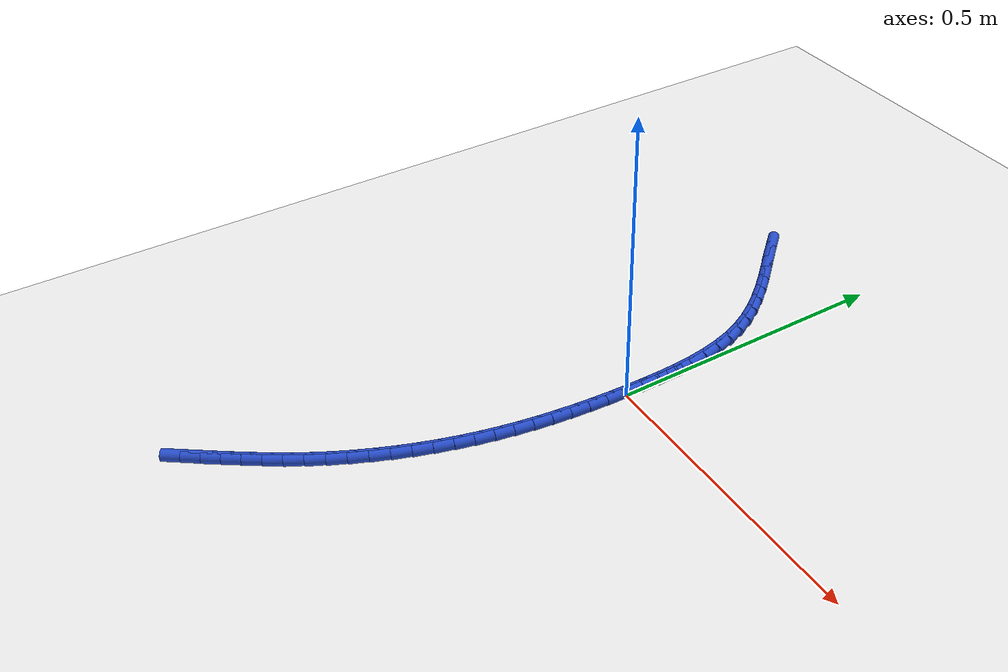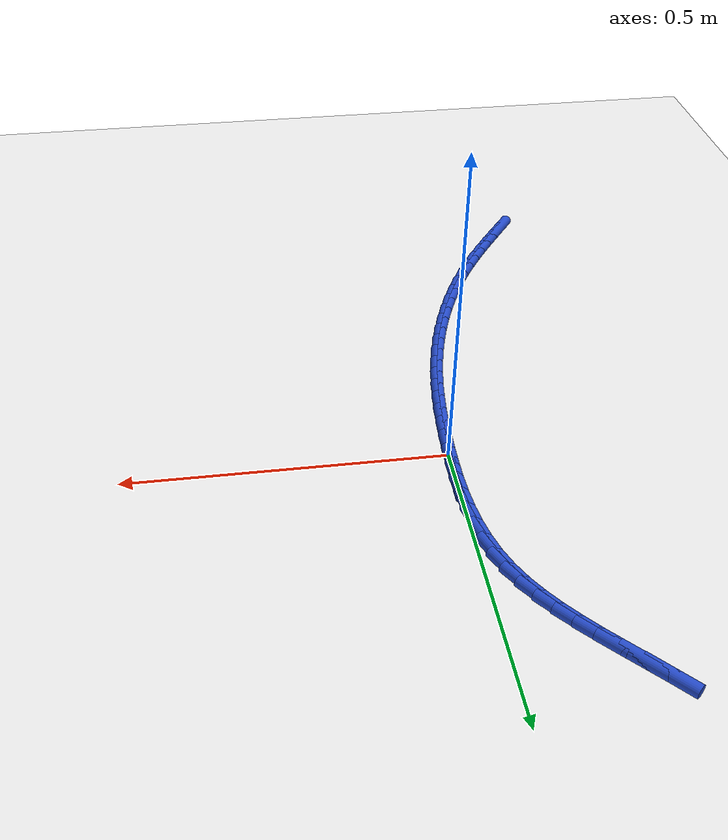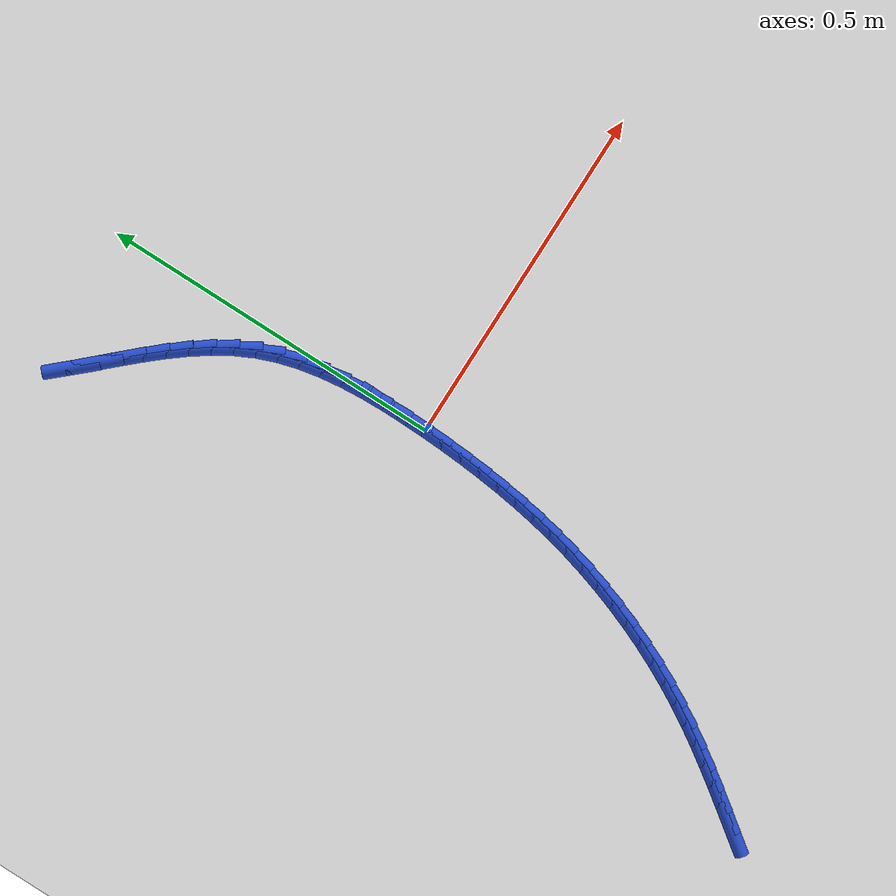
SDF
<sdf version="1.6">
 <world name="default">
  <model name="ground_plane">
   <static>1</static>
   <link name="link">
    <collision name="collision">
     <geometry><plane><normal>0 0 1</normal><size>100 100</size></plane></geometry>
     <surface><friction><ode><mu>100</mu><mu2>50</mu2></ode></friction></surface>
    </collision>
    <visual name="visual">
     <cast_shadows>0</cast_shadows>
     <geometry><plane><normal>0 0 1</normal><size>100 100</size></plane></geometry>
     <material>
      <script><uri>file://media/materials/scripts/gazebo.material</uri><name>Gazebo/WhiteGlow</name></script>
     </material>
    </visual>
   </link>
  </model>
  <model name="line">
   <link name="link_0">
    <pose>-2.4936649967166602e-18 2.0816681711721685e-17 0.01 0 1.57 1.546620202439444</pose>
    <collision name="collision">
     <geometry><cylinder><radius>0.01</radius><length>0.08</length></cylinder></geometry>
    </collision>
    <visual name="visual">
     <material>
      <script><name>Gazebo/Blue</name><uri>file://media/materials/scripts/gazebo.material</uri></script>
     </material>
     <geometry><cylinder><radius>0.01</radius><length>0.08</length></cylinder></geometry>
    </visual>
   </link>
   <link name="link_1">
    <pose>0.0007892910329652883 0.03264118098984923 0.01 0 1.57 -1.5697717680447212</pose>
    <collision name="collision">
     <geometry><cylinder><radius>0.01</radius><length>0.08</length></cylinder></geometry>
    </collision>
    <visual name="visual">
     <material>
      <script><name>Gazebo/Blue</name><uri>file://media/materials/scripts/gazebo.material</uri></script>
     </material>
     <geometry><cylinder><radius>0.01</radius><length>0.08</length></cylinder></geometry>
    </visual>
   </link>
   <link name="link_2">
    <pose>0.0007557367479779746 0.06539115578699509 0.01 0 1.57 -1.5357777210249333</pose>
    <collision name="collision">
     <geometry><cylinder><radius>0.01</radius><length>0.08</length></cylinder></geometry>
    </collision>
    <visual name="visual">
     <material>
      <script><name>Gazebo/Blue</name><uri>file://media/materials/scripts/gazebo.material</uri></script>
     </material>
     <geometry><cylinder><radius>0.01</radius><length>0.08</length></cylinder></geometry>
    </visual>
   </link>
   <link name="link_3">
    <pose>-0.00038771334826898703 0.09803045217149915 0.01 0 1.57 -1.492329982726787</pose>
    <collision name="collision">
     <geometry><cylinder><radius>0.01</radius><length>0.08</length></cylinder></geometry>
    </collision>
    <visual name="visual">
     <material>
      <script><name>Gazebo/Blue</name><uri>file://media/materials/scripts/gazebo.material</uri></script>
     </material>
     <geometry><cylinder><radius>0.01</radius><length>0.08</length></cylinder></geometry>
    </visual>
   </link>
   <link name="link_4">
    <pose>-0.0029281097490826413 0.13033959792342292 0.01 0 1.57 -1.4385606663292798</pose>
    <collision name="collision">
     <geometry><cylinder><radius>0.01</radius><length>0.08</length></cylinder></geometry>
    </collision>
    <visual name="visual">
     <material>
      <script><name>Gazebo/Blue</name><uri>file://media/materials/scripts/gazebo.material</uri></script>
     </material>
     <geometry><cylinder><radius>0.01</radius><length>0.08</length></cylinder></geometry>
    </visual>
   </link>
   <link name="link_5">
    <pose>-0.0071525029477700315 0.1620991208228279 0.01 0 1.57 -1.3734828369184402</pose>
    <collision name="collision">
     <geometry><cylinder><radius>0.01</radius><length>0.08</length></cylinder></geometry>
    </collision>
    <visual name="visual">
     <material>
      <script><name>Gazebo/Blue</name><uri>file://media/materials/scripts/gazebo.material</uri></script>
     </material>
     <geometry><cylinder><radius>0.01</radius><length>0.08</length></cylinder></geometry>
    </visual>
   </link>
   <link name="link_6">
    <pose>-0.013347943437638201 0.19308954864977562 0.01 0 1.57 -1.296149713333827</pose>
    <collision name="collision">
     <geometry><cylinder><radius>0.01</radius><length>0.08</length></cylinder></geometry>
    </collision>
    <visual name="visual">
     <material>
      <script><name>Gazebo/Blue</name><uri>file://media/materials/scripts/gazebo.material</uri></script>
     </material>
     <geometry><cylinder><radius>0.01</radius><length>0.08</length></cylinder></geometry>
    </visual>
   </link>
   <link name="link_7">
    <pose>-0.02180148171199419 0.2230914091843275 0.01 0 1.57 -1.2059257523534648</pose>
    <collision name="collision">
     <geometry><cylinder><radius>0.01</radius><length>0.08</length></cylinder></geometry>
    </collision>
    <visual name="visual">
     <material>
      <script><name>Gazebo/Blue</name><uri>file://media/materials/scripts/gazebo.material</uri></script>
     </material>
     <geometry><cylinder><radius>0.01</radius><length>0.08</length></cylinder></geometry>
    </visual>
   </link>
   <link name="link_8">
    <pose>-0.032800005527298864 0.25188533559755705 0.01 0 1.57 -1.1087909732325651</pose>
    <collision name="collision">
     <geometry><cylinder><radius>0.01</radius><length>0.08</length></cylinder></geometry>
    </collision>
    <visual name="visual">
     <material>
      <script><name>Gazebo/Blue</name><uri>file://media/materials/scripts/gazebo.material</uri></script>
     </material>
     <geometry><cylinder><radius>0.01</radius><length>0.08</length></cylinder></geometry>
    </visual>
   </link>
   <link name="link_9">
    <pose>-0.04647673897958539 0.27935147613064515 0.01 0 1.57 -1.0229397517726437</pose>
    <collision name="collision">
     <geometry><cylinder><radius>0.01</radius><length>0.08</length></cylinder></geometry>
    </collision>
    <visual name="visual">
     <material>
      <script><name>Gazebo/Blue</name><uri>file://media/materials/scripts/gazebo.material</uri></script>
     </material>
     <geometry><cylinder><radius>0.01</radius><length>0.08</length></cylinder></geometry>
    </visual>
   </link>
   <link name="link_10">
    <pose>-0.06252572820431748 0.3056543977703248 0.01 0 1.57 -0.9524612043250442</pose>
    <collision name="collision">
     <geometry><cylinder><radius>0.01</radius><length>0.08</length></cylinder></geometry>
    </collision>
    <visual name="visual">
     <material>
      <script><name>Gazebo/Blue</name><uri>file://media/materials/scripts/gazebo.material</uri></script>
     </material>
     <geometry><cylinder><radius>0.01</radius><length>0.08</length></cylinder></geometry>
    </visual>
   </link>
   <link name="link_11">
    <pose>-0.08056306454100882 0.331009152289144 0.01 0 1.57 -0.8974322640038043</pose>
    <collision name="collision">
     <geometry><cylinder><radius>0.01</radius><length>0.08</length></cylinder></geometry>
    </collision>
    <visual name="visual">
     <material>
      <script><name>Gazebo/Blue</name><uri>file://media/materials/scripts/gazebo.material</uri></script>
     </material>
     <geometry><cylinder><radius>0.01</radius><length>0.08</length></cylinder></geometry>
    </visual>
   </link>
   <link name="link_12">
    <pose>-0.10020483932917305 0.3556307914596505 0.01 0 1.57 -0.8573566042983941</pose>
    <collision name="collision">
     <geometry><cylinder><radius>0.01</radius><length>0.08</length></cylinder></geometry>
    </collision>
    <visual name="visual">
     <material>
      <script><name>Gazebo/Blue</name><uri>file://media/materials/scripts/gazebo.material</uri></script>
     </material>
     <geometry><cylinder><radius>0.01</radius><length>0.08</length></cylinder></geometry>
    </visual>
   </link>
   <link name="link_13">
    <pose>-0.12106714390832375 0.3797343670543919 0.01 0 1.57 -0.8315557217658187</pose>
    <collision name="collision">
     <geometry><cylinder><radius>0.01</radius><length>0.08</length></cylinder></geometry>
    </collision>
    <visual name="visual">
     <material>
      <script><name>Gazebo/Blue</name><uri>file://media/materials/scripts/gazebo.material</uri></script>
     </material>
     <geometry><cylinder><radius>0.01</radius><length>0.08</length></cylinder></geometry>
    </visual>
   </link>
   <link name="link_14">
    <pose>-0.14276606961797447 0.4035349308459162 0.01 0 1.57 -0.8194195103355466</pose>
    <collision name="collision">
     <geometry><cylinder><radius>0.01</radius><length>0.08</length></cylinder></geometry>
    </collision>
    <visual name="visual">
     <material>
      <script><name>Gazebo/Blue</name><uri>file://media/materials/scripts/gazebo.material</uri></script>
     </material>
     <geometry><cylinder><radius>0.01</radius><length>0.08</length></cylinder></geometry>
    </visual>
   </link>
   <link name="link_15">
    <pose>-0.16491770779763892 0.42724753460677123 0.01 0 1.57 -0.8205388951389542</pose>
    <collision name="collision">
     <geometry><cylinder><radius>0.01</radius><length>0.08</length></cylinder></geometry>
    </collision>
    <visual name="visual">
     <material>
      <script><name>Gazebo/Blue</name><uri>file://media/materials/scripts/gazebo.material</uri></script>
     </material>
     <geometry><cylinder><radius>0.01</radius><length>0.08</length></cylinder></geometry>
    </visual>
   </link>
   <link name="link_16">
    <pose>-0.18713814978683072 0.4510872301095047 0.01 0 1.57 -0.8347536084318834</pose>
    <collision name="collision">
     <geometry><cylinder><radius>0.01</radius><length>0.08</length></cylinder></geometry>
    </collision>
    <visual name="visual">
     <material>
      <script><name>Gazebo/Blue</name><uri>file://media/materials/scripts/gazebo.material</uri></script>
     </material>
     <geometry><cylinder><radius>0.01</radius><length>0.08</length></cylinder></geometry>
    </visual>
   </link>
   <link name="link_228">
    <pose>-0.23162401266103744 -0.6416155795473016 0.01 0 1.57 0.9369974953294458</pose>
    <collision name="collision">
     <geometry><cylinder><radius>0.01</radius><length>0.08</length></cylinder></geometry>
    </collision>
    <visual name="visual">
     <material>
      <script><name>Gazebo/Blue</name><uri>file://media/materials/scripts/gazebo.material</uri></script>
     </material>
     <geometry><cylinder><radius>0.01</radius><length>0.08</length></cylinder></geometry>
    </visual>
   </link>
   <link name="link_229">
    <pose>-0.21324995004134661 -0.6166151283124303 0.01 0 1.57 0.9438661940704279</pose>
    <collision name="collision">
     <geometry><cylinder><radius>0.01</radius><length>0.08</length></cylinder></geometry>
    </collision>
    <visual name="visual">
     <material>
      <script><name>Gazebo/Blue</name><uri>file://media/materials/scripts/gazebo.material</uri></script>
     </material>
     <geometry><cylinder><radius>0.01</radius><length>0.08</length></cylinder></geometry>
    </visual>
   </link>
   <link name="link_230">
    <pose>-0.19510290662040156 -0.5915648001493947 0.01 0 1.57 0.9567499781032822</pose>
    <collision name="collision">
     <geometry><cylinder><radius>0.01</radius><length>0.08</length></cylinder></geometry>
    </collision>
    <visual name="visual">
     <material>
      <script><name>Gazebo/Blue</name><uri>file://media/materials/scripts/gazebo.material</uri></script>
     </material>
     <geometry><cylinder><radius>0.01</radius><length>0.08</length></cylinder></geometry>
    </visual>
   </link>
   <link name="link_231">
    <pose>-0.17730431598215465 -0.5663171010043251 0.01 0 1.57 0.9756059462279737</pose>
    <collision name="collision">
     <geometry><cylinder><radius>0.01</radius><length>0.08</length></cylinder></geometry>
    </collision>
    <visual name="visual">
     <material>
      <script><name>Gazebo/Blue</name><uri>file://media/materials/scripts/gazebo.material</uri></script>
     </material>
     <geometry><cylinder><radius>0.01</radius><length>0.08</length></cylinder></geometry>
    </visual>
   </link>
   <link name="link_232">
    <pose>-0.1599756117105586 -0.5407245368233515 0.01 0 1.57 1.0003136494749336</pose>
    <collision name="collision">
     <geometry><cylinder><radius>0.01</radius><length>0.08</length></cylinder></geometry>
    </collision>
    <visual name="visual">
     <material>
      <script><name>Gazebo/Blue</name><uri>file://media/materials/scripts/gazebo.material</uri></script>
     </material>
     <geometry><cylinder><radius>0.01</radius><length>0.08</length></cylinder></geometry>
    </visual>
   </link>
   <link name="link_233">
    <pose>-0.14323822738956593 -0.5146396135526041 0.01 0 1.57 1.0306584772478662</pose>
    <collision name="collision">
     <geometry><cylinder><radius>0.01</radius><length>0.08</length></cylinder></geometry>
    </collision>
    <visual name="visual">
     <material>
      <script><name>Gazebo/Blue</name><uri>file://media/materials/scripts/gazebo.material</uri></script>
     </material>
     <geometry><cylinder><radius>0.01</radius><length>0.08</length></cylinder></geometry>
    </visual>
   </link>
   <link name="link_234">
    <pose>-0.12721359660312925 -0.48791483713821304 0.01 0 1.57 1.0658385137579307</pose>
    <collision name="collision">
     <geometry><cylinder><radius>0.01</radius><length>0.08</length></cylinder></geometry>
    </collision>
    <visual name="visual">
     <material>
      <script><name>Gazebo/Blue</name><uri>file://media/materials/scripts/gazebo.material</uri></script>
     </material>
     <geometry><cylinder><radius>0.01</radius><length>0.08</length></cylinder></geometry>
    </visual>
   </link>
   <link name="link_235">
    <pose>-0.11201629995843808 -0.4604212306584023 0.01 0 1.57 1.1017955603402778</pose>
    <collision name="collision">
     <geometry><cylinder><radius>0.01</radius><length>0.08</length></cylinder></geometry>
    </collision>
    <visual name="visual">
     <material>
      <script><name>Gazebo/Blue</name><uri>file://media/materials/scripts/gazebo.material</uri></script>
     </material>
     <geometry><cylinder><radius>0.01</radius><length>0.08</length></cylinder></geometry>
    </visual>
   </link>
   <link name="link_236">
    <pose>-0.0977057017495479 -0.4321790148027981 0.01 0 1.57 1.1368666689961764</pose>
    <collision name="collision">
     <geometry><cylinder><radius>0.01</radius><length>0.08</length></cylinder></geometry>
    </collision>
    <visual name="visual">
     <material>
      <script><name>Gazebo/Blue</name><uri>file://media/materials/scripts/gazebo.material</uri></script>
     </material>
     <geometry><cylinder><radius>0.01</radius><length>0.08</length></cylinder></geometry>
    </visual>
   </link>
   <link name="link_237">
    <pose>-0.08431451012220459 -0.4032804366863945 0.01 0 1.57 1.1712911350747572</pose>
    <collision name="collision">
     <geometry><cylinder><radius>0.01</radius><length>0.08</length></cylinder></geometry>
    </collision>
    <visual name="visual">
     <material>
      <script><name>Gazebo/Blue</name><uri>file://media/materials/scripts/gazebo.material</uri></script>
     </material>
     <geometry><cylinder><radius>0.01</radius><length>0.08</length></cylinder></geometry>
    </visual>
   </link>
   <link name="link_238">
    <pose>-0.07187526072916235 -0.3738182095100365 0.01 0 1.57 1.205311060358194</pose>
    <collision name="collision">
     <geometry><cylinder><radius>0.01</radius><length>0.08</length></cylinder></geometry>
    </collision>
    <visual name="visual">
     <material>
      <script><name>Gazebo/Blue</name><uri>file://media/materials/scripts/gazebo.material</uri></script>
     </material>
     <geometry><cylinder><radius>0.01</radius><length>0.08</length></cylinder></geometry>
    </visual>
   </link>
   <link name="link_239">
    <pose>-0.06042048922317537 -0.343885046474569 0.01 0 1.57 1.2391628024953316</pose>
    <collision name="collision">
     <geometry><cylinder><radius>0.01</radius><length>0.08</length></cylinder></geometry>
    </collision>
    <visual name="visual">
     <material>
      <script><name>Gazebo/Blue</name><uri>file://media/materials/scripts/gazebo.material</uri></script>
     </material>
     <geometry><cylinder><radius>0.01</radius><length>0.08</length></cylinder></geometry>
    </visual>
   </link>
   <link name="link_240">
    <pose>-0.0499827312569982 -0.31357366078083837 0.01 0 1.57 1.2730804338300177</pose>
    <collision name="collision">
     <geometry><cylinder><radius>0.01</radius><length>0.08</length></cylinder></geometry>
    </collision>
    <visual name="visual">
     <material>
      <script><name>Gazebo/Blue</name><uri>file://media/materials/scripts/gazebo.material</uri></script>
     </material>
     <geometry><cylinder><radius>0.01</radius><length>0.08</length></cylinder></geometry>
    </visual>
   </link>
   <link name="link_241">
    <pose>-0.04059452248338445 -0.28297676562968777 0.01 0 1.57 1.307299213743087</pose>
    <collision name="collision">
     <geometry><cylinder><radius>0.01</radius><length>0.08</length></cylinder></geometry>
    </collision>
    <visual name="visual">
     <material>
      <script><name>Gazebo/Blue</name><uri>file://media/materials/scripts/gazebo.material</uri></script>
     </material>
     <geometry><cylinder><radius>0.01</radius><length>0.08</length></cylinder></geometry>
    </visual>
   </link>
   <link name="link_242">
    <pose>-0.032288398555088714 -0.25218707422196346 0.01 0 1.57 1.3417817630247704</pose>
    <collision name="collision">
     <geometry><cylinder><radius>0.01</radius><length>0.08</length></cylinder></geometry>
    </collision>
    <visual name="visual">
     <material>
      <script><name>Gazebo/Blue</name><uri>file://media/materials/scripts/gazebo.material</uri></script>
     </material>
     <geometry><cylinder><radius>0.01</radius><length>0.08</length></cylinder></geometry>
    </visual>
   </link>
   <link name="link_243">
    <pose>-0.02508453360134324 -0.22128301165840497 0.01 0 1.57 1.375044984365671</pose>
    <collision name="collision">
     <geometry><cylinder><radius>0.01</radius><length>0.08</length></cylinder></geometry>
    </collision>
    <visual name="visual">
     <material>
      <script><name>Gazebo/Blue</name><uri>file://media/materials/scripts/gazebo.material</uri></script>
     </material>
     <geometry><cylinder><radius>0.01</radius><length>0.08</length></cylinder></geometry>
    </visual>
   </link>
   <link name="link_244">
    <pose>-0.018933459997801032 -0.19026250743216017 0.01 0 1.57 1.4063474287381912</pose>
    <collision name="collision">
     <geometry><cylinder><radius>0.01</radius><length>0.08</length></cylinder></geometry>
    </collision>
    <visual name="visual">
     <material>
      <script><name>Gazebo/Blue</name><uri>file://media/materials/scripts/gazebo.material</uri></script>
     </material>
     <geometry><cylinder><radius>0.01</radius><length>0.08</length></cylinder></geometry>
    </visual>
   </link>
   <link name="link_245">
    <pose>-0.013761343217095292 -0.159095326486191 0.01 0 1.57 1.4354934527844971</pose>
    <collision name="collision">
     <geometry><cylinder><radius>0.01</radius><length>0.08</length></cylinder></geometry>
    </collision>
    <visual name="visual">
     <material>
      <script><name>Gazebo/Blue</name><uri>file://media/materials/scripts/gazebo.material</uri></script>
     </material>
     <geometry><cylinder><radius>0.01</radius><length>0.08</length></cylinder></geometry>
    </visual>
   </link>
   <link name="link_246">
    <pose>-0.009494322926194206 -0.12775120393591236 0.01 0 1.57 1.4623286524643573</pose>
    <collision name="collision">
     <geometry><cylinder><radius>0.01</radius><length>0.08</length></cylinder></geometry>
    </collision>
    <visual name="visual">
     <material>
      <script><name>Gazebo/Blue</name><uri>file://media/materials/scripts/gazebo.material</uri></script>
     </material>
     <geometry><cylinder><radius>0.01</radius><length>0.08</length></cylinder></geometry>
    </visual>
   </link>
   <link name="link_247">
    <pose>-0.006058538792065948 -0.09619987489673901 0.01 0 1.57 1.486738513621219</pose>
    <collision name="collision">
     <geometry><cylinder><radius>0.01</radius><length>0.08</length></cylinder></geometry>
    </collision>
    <visual name="visual">
     <material>
      <script><name>Gazebo/Blue</name><uri>file://media/materials/scripts/gazebo.material</uri></script>
     </material>
     <geometry><cylinder><radius>0.01</radius><length>0.08</length></cylinder></geometry>
    </visual>
   </link>
   <link name="link_248">
    <pose>-0.0033801304816787085 -0.06441107448408595 0.01 0 1.57 1.5086460188231936</pose>
    <collision name="collision">
     <geometry><cylinder><radius>0.01</radius><length>0.08</length></cylinder></geometry>
    </collision>
    <visual name="visual">
     <material>
      <script><name>Gazebo/Blue</name><uri>file://media/materials/scripts/gazebo.material</uri></script>
     </material>
     <geometry><cylinder><radius>0.01</radius><length>0.08</length></cylinder></geometry>
    </visual>
   </link>
   <link name="link_249">
    <pose>-0.0013852376620006662 -0.03235453781336796 0.01 0 1.57 1.5280081346456094</pose>
    <collision name="collision">
     <geometry><cylinder><radius>0.01</radius><length>0.08</length></cylinder></geometry>
    </collision>
    <visual name="visual">
     <material>
      <script><name>Gazebo/Blue</name><uri>file://media/materials/scripts/gazebo.material</uri></script>
     </material>
     <geometry><cylinder><radius>0.01</radius><length>0.08</length></cylinder></geometry>
    </visual>
   </link>
   <link name="link_250">
    <pose>-3.577867169202165e-18 4.163336342344337e-17 0.01 0 1.57 1.544811663702535</pose>
    <collision name="collision">
     <geometry><cylinder><radius>0.01</radius><length>0.08</length></cylinder></geometry>
    </collision>
    <visual name="visual">
     <material>
      <script><name>Gazebo/Blue</name><uri>file://media/materials/scripts/gazebo.material</uri></script>
     </material>
     <geometry><cylinder><radius>0.01</radius><length>0.08</length></cylinder></geometry>
    </visual>
   </link>
   <link name="link_251">
    <pose>0.0008494428373550981 0.032682803840603195 0.01 0 1.57 1.5590688774224286</pose>
    <collision name="collision">
     <geometry><cylinder><radius>0.01</radius><length>0.08</length></cylinder></geometry>
    </collision>
    <visual name="visual">
     <material>
      <script><name>Gazebo/Blue</name><uri>file://media/materials/scripts/gazebo.material</uri></script>
     </material>
     <geometry><cylinder><radius>0.01</radius><length>0.08</length></cylinder></geometry>
    </visual>
   </link>
   <link name="link_252">
    <pose>0.001236951183096456 0.06572413859302667 0.01 0 1.57 1.5519782000666122</pose>
    <collision name="collision">
     <geometry><cylinder><radius>0.01</radius><length>0.08</length></cylinder></geometry>
    </collision>
    <visual name="visual">
     <material>
      <script><name>Gazebo/Blue</name><uri>file://media/materials/scripts/gazebo.material</uri></script>
     </material>
     <geometry><cylinder><radius>0.01</radius><length>0.08</length></cylinder></geometry>
    </visual>
   </link>
  </model>
 </world>
</sdf>
